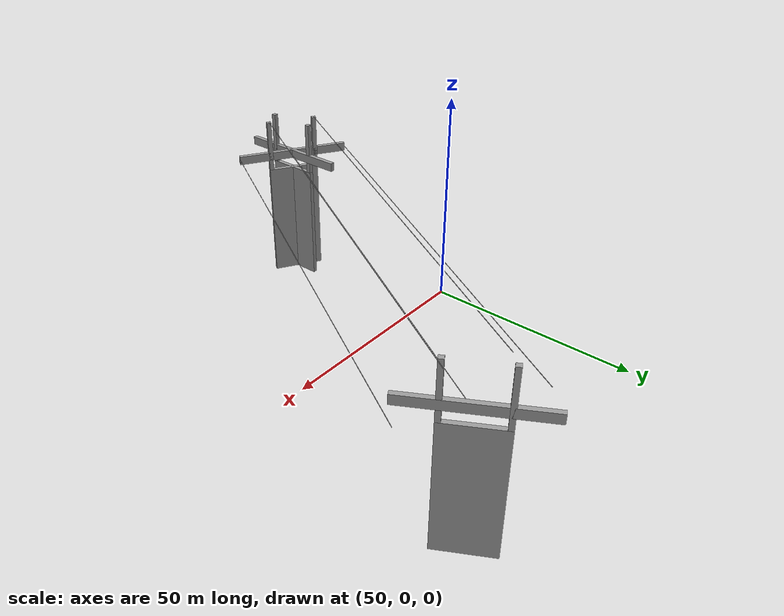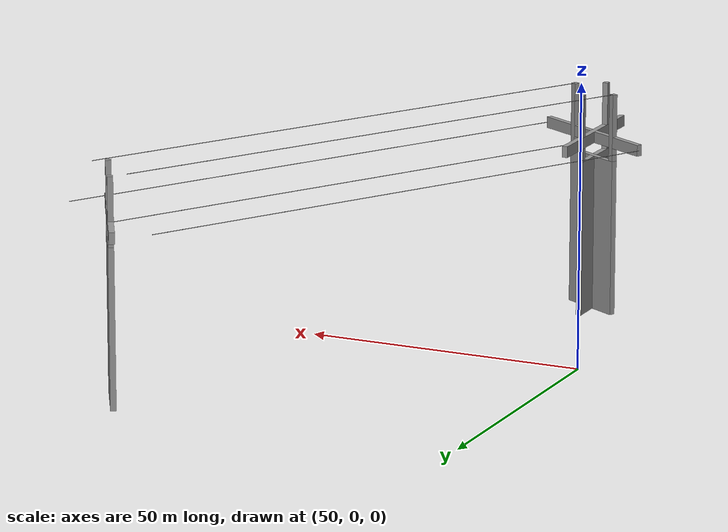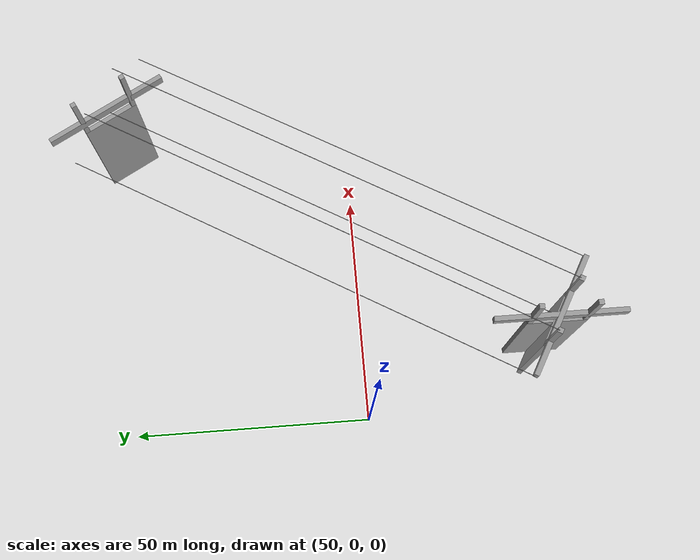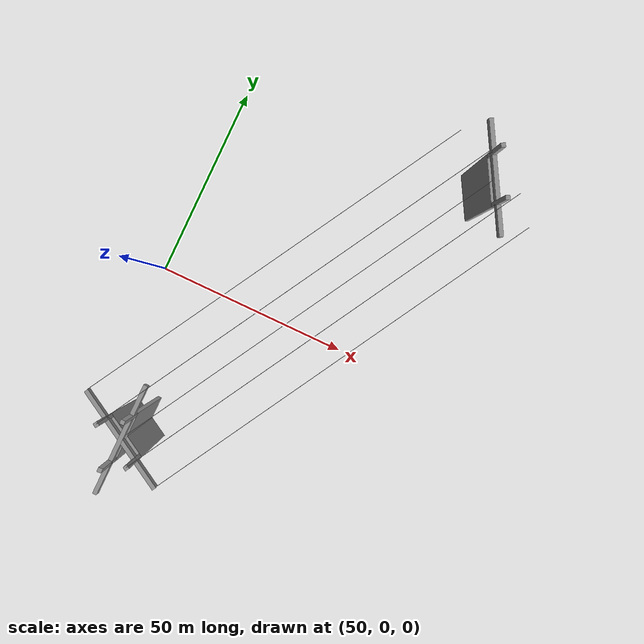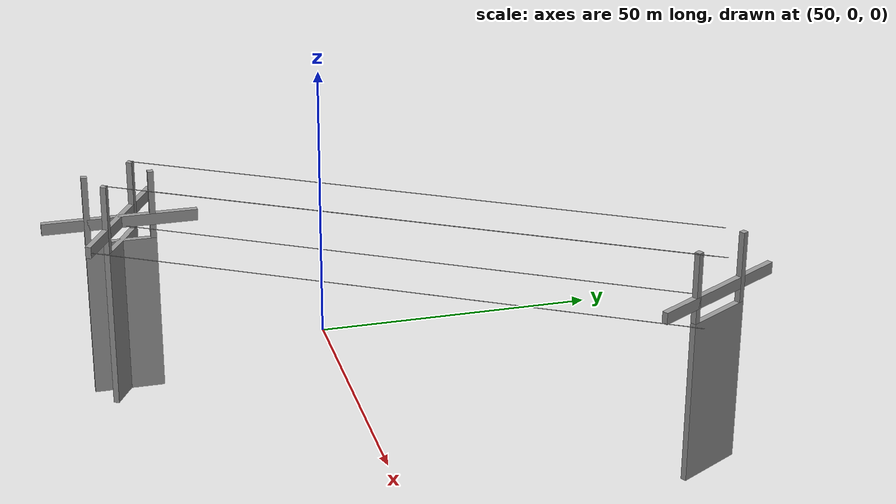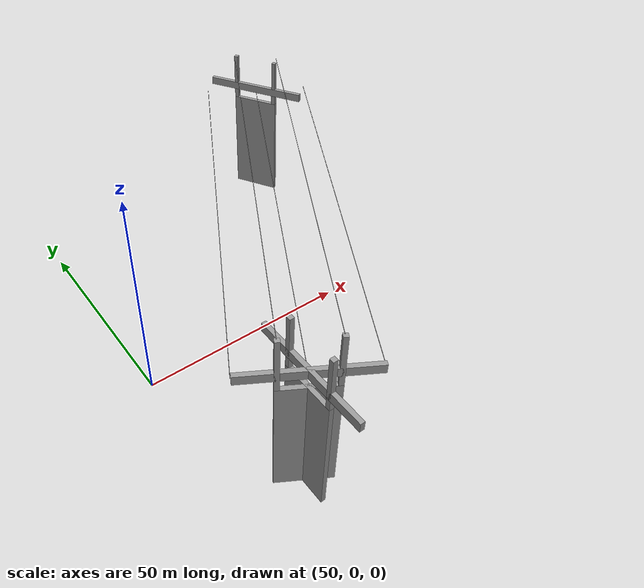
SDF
<sdf version="1.6">
 <world name="vrc_task_1">
  <model name="v4uav_simple_circuit_tower_0">
   <link name="link">
    <inertial>
     <mass>1</mass>
     <inertia>
      <ixx>0.166667</ixx>
      <ixy>0</ixy>
      <ixz>0</ixz>
      <iyy>0.166667</iyy>
      <iyz>0</iyz>
      <izz>0.166667</izz>
     </inertia>
    </inertial>
    <pose>0 0 14 0 -0 0</pose>
    <visual name="ModelPreview_4::link::visual_3">
     <geometry><box><size>1 1 12</size></box></geometry>
     <material>
      <script><name>Gazebo/Grey</name><uri>file://media/materials/scripts/gazebo.material</uri></script>
      <shader type="pixel"><normal_map>__default__</normal_map></shader>
      <ambient>0.3 0.3 0.3 1</ambient>
      <diffuse>0.7 0.7 0.7 1</diffuse>
      <specular>0.01 0.01 0.01 1</specular>
      <emissive>0 0 0 1</emissive>
     </material>
     <pose>0 -5.5 20 0 -0 0</pose>
    </visual>
    <visual name="ModelPreview_4::link::visual_1">
     <geometry><box><size>1 26.2 2</size></box></geometry>
     <material>
      <script><name>Gazebo/Grey</name><uri>file://media/materials/scripts/gazebo.material</uri></script>
      <shader type="pixel"><normal_map>__default__</normal_map></shader>
      <ambient>0.3 0.3 0.3 1</ambient>
      <diffuse>0.7 0.7 0.7 1</diffuse>
      <specular>0.01 0.01 0.01 1</specular>
      <emissive>0 0 0 1</emissive>
     </material>
     <pose>0 0 17.42 0 -0 0</pose>
    </visual>
    <visual name="ModelPreview_4::link::visual_2">
     <geometry><box><size>1 1 12</size></box></geometry>
     <material>
      <script><name>Gazebo/Grey</name><uri>file://media/materials/scripts/gazebo.material</uri></script>
      <shader type="pixel"><normal_map>__default__</normal_map></shader>
      <ambient>0.3 0.3 0.3 1</ambient>
      <diffuse>0.7 0.7 0.7 1</diffuse>
      <specular>0.01 0.01 0.01 1</specular>
      <emissive>0 0 0 1</emissive>
     </material>
     <pose>0 5.5 20 0 -0 0</pose>
    </visual>
    <visual name="visual">
     <geometry><box><size>1 12 28</size></box></geometry>
     <material>
      <script><name>Gazebo/Grey</name><uri>file://media/materials/scripts/gazebo.material</uri></script>
      <shader type="pixel"><normal_map>__default__</normal_map></shader>
      <ambient>0.3 0.3 0.3 1</ambient>
      <diffuse>0.7 0.7 0.7 1</diffuse>
      <specular>0.01 0.01 0.01 1</specular>
      <emissive>0 0 0 1</emissive>
     </material>
    </visual>
    <collision name="collision">
     <geometry><box><size>1 1 1</size></box></geometry>
     <surface>
      <friction>
       <ode><mu>1</mu><mu2>1</mu2><fdir1>0 0 0</fdir1><slip1>0</slip1><slip2>0</slip2></ode>
       <torsional>
        <coefficient>1</coefficient>
        <patch_radius>0</patch_radius>
        <surface_radius>0</surface_radius>
        <use_patch_radius>1</use_patch_radius>
        <ode><slip>0</slip></ode>
       </torsional>
      </friction>
      <bounce><restitution_coefficient>0</restitution_coefficient><threshold>1e+06</threshold></bounce>
      <contact>
       <collide_without_contact>0</collide_without_contact>
       <collide_without_contact_bitmask>1</collide_without_contact_bitmask>
       <collide_bitmask>1</collide_bitmask>
       <ode>
        <soft_cfm>0</soft_cfm>
        <soft_erp>0.2</soft_erp>
        <kp>1e+13</kp>
        <kd>1</kd>
        <max_vel>0.01</max_vel>
        <min_depth>0</min_depth>
       </ode>
       <bullet>
        <split_impulse>1</split_impulse>
        <split_impulse_penetration_threshold>-0.01</split_impulse_penetration_threshold>
        <soft_cfm>0</soft_cfm>
        <soft_erp>0.2</soft_erp>
        <kp>1e+13</kp>
        <kd>1</kd>
       </bullet>
      </contact>
     </surface>
    </collision>
   </link>
   <static>1</static>
   <pose>113 50 0 0 -0 0.523601</pose>
  </model>
  <model name="v4uav_simple_circuit_tower_2">
   <link name="link">
    <inertial>
     <mass>1</mass>
     <inertia>
      <ixx>0.166667</ixx>
      <ixy>0</ixy>
      <ixz>0</ixz>
      <iyy>0.166667</iyy>
      <iyz>0</iyz>
      <izz>0.166667</izz>
     </inertia>
    </inertial>
    <pose>0 0 14 0 -0 0</pose>
    <visual name="ModelPreview_4::link::visual_3">
     <geometry><box><size>1 1 12</size></box></geometry>
     <material>
      <script><name>Gazebo/Grey</name><uri>file://media/materials/scripts/gazebo.material</uri></script>
      <shader type="pixel"><normal_map>__default__</normal_map></shader>
      <ambient>0.3 0.3 0.3 1</ambient>
      <diffuse>0.7 0.7 0.7 1</diffuse>
      <specular>0.01 0.01 0.01 1</specular>
      <emissive>0 0 0 1</emissive>
     </material>
     <pose>0 -5.5 20 0 -0 0</pose>
    </visual>
    <visual name="ModelPreview_4::link::visual_1">
     <geometry><box><size>1 26.2 2</size></box></geometry>
     <material>
      <script><name>Gazebo/Grey</name><uri>file://media/materials/scripts/gazebo.material</uri></script>
      <shader type="pixel"><normal_map>__default__</normal_map></shader>
      <ambient>0.3 0.3 0.3 1</ambient>
      <diffuse>0.7 0.7 0.7 1</diffuse>
      <specular>0.01 0.01 0.01 1</specular>
      <emissive>0 0 0 1</emissive>
     </material>
     <pose>0 0 17.42 0 -0 0</pose>
    </visual>
    <visual name="ModelPreview_4::link::visual_2">
     <geometry><box><size>1 1 12</size></box></geometry>
     <material>
      <script><name>Gazebo/Grey</name><uri>file://media/materials/scripts/gazebo.material</uri></script>
      <shader type="pixel"><normal_map>__default__</normal_map></shader>
      <ambient>0.3 0.3 0.3 1</ambient>
      <diffuse>0.7 0.7 0.7 1</diffuse>
      <specular>0.01 0.01 0.01 1</specular>
      <emissive>0 0 0 1</emissive>
     </material>
     <pose>0 5.5 20 0 -0 0</pose>
    </visual>
    <visual name="visual">
     <geometry><box><size>1 12 28</size></box></geometry>
     <material>
      <script><name>Gazebo/Grey</name><uri>file://media/materials/scripts/gazebo.material</uri></script>
      <shader type="pixel"><normal_map>__default__</normal_map></shader>
      <ambient>0.3 0.3 0.3 1</ambient>
      <diffuse>0.7 0.7 0.7 1</diffuse>
      <specular>0.01 0.01 0.01 1</specular>
      <emissive>0 0 0 1</emissive>
     </material>
    </visual>
    <collision name="collision">
     <geometry><box><size>1 1 1</size></box></geometry>
     <surface>
      <friction>
       <ode><mu>1</mu><mu2>1</mu2><fdir1>0 0 0</fdir1><slip1>0</slip1><slip2>0</slip2></ode>
       <torsional>
        <coefficient>1</coefficient>
        <patch_radius>0</patch_radius>
        <surface_radius>0</surface_radius>
        <use_patch_radius>1</use_patch_radius>
        <ode><slip>0</slip></ode>
       </torsional>
      </friction>
      <bounce><restitution_coefficient>0</restitution_coefficient><threshold>1e+06</threshold></bounce>
      <contact>
       <collide_without_contact>0</collide_without_contact>
       <collide_without_contact_bitmask>1</collide_without_contact_bitmask>
       <collide_bitmask>1</collide_bitmask>
       <ode>
        <soft_cfm>0</soft_cfm>
        <soft_erp>0.2</soft_erp>
        <kp>1e+13</kp>
        <kd>1</kd>
        <max_vel>0.01</max_vel>
        <min_depth>0</min_depth>
       </ode>
       <bullet>
        <split_impulse>1</split_impulse>
        <split_impulse_penetration_threshold>-0.01</split_impulse_penetration_threshold>
        <soft_cfm>0</soft_cfm>
        <soft_erp>0.2</soft_erp>
        <kp>1e+13</kp>
        <kd>1</kd>
       </bullet>
      </contact>
     </surface>
    </collision>
   </link>
   <static>1</static>
   <pose>63 -37 0 0 -0 1.0472</pose>
  </model>
  <model name="v4uav_simple_circuit_line_0">
   <link name="link">
    <pose>0 0 0 1.5708 -0 0</pose>
    <inertial>
     <mass>1</mass>
     <pose>0 0 0 1.5708 -0 0</pose>
     <inertia><ixx>1</ixx><ixy>0</ixy><ixz>0</ixz><iyy>1</iyy><iyz>0</iyz><izz>1</izz></inertia>
    </inertial>
    <visual name="ModelPreview_1::link::visual_1">
     <cast_shadows>0</cast_shadows>
     <geometry><cylinder><radius>0.05</radius><length>100</length></cylinder></geometry>
     <material>
      <shader type="pixel"><normal_map>__default__</normal_map></shader>
      <script><name>ModelPreview_33::link::visual_MATERIAL_</name><uri>__default__</uri></script>
      <ambient>0 0 0 1</ambient>
      <diffuse>0 0 0 1</diffuse>
      <specular>0 0 0 1</specular>
      <emissive>0 0 0 1</emissive>
     </material>
     <pose>-5.5 40 0 0 -0 0</pose>
    </visual>
    <visual name="visual">
     <cast_shadows>0</cast_shadows>
     <geometry><cylinder><radius>0.05</radius><length>100</length></cylinder></geometry>
     <material>
      <shader type="pixel"><normal_map>__default__</normal_map></shader>
      <script><name>ModelPreview_33::link::visual_MATERIAL_</name><uri>__default__</uri></script>
      <ambient>0 0 0 1</ambient>
      <diffuse>0 0 0 1</diffuse>
      <specular>0 0 0 1</specular>
      <emissive>0 0 0 1</emissive>
     </material>
     <pose>5.5 40 0 0 -0 0</pose>
    </visual>
    <visual name="ModelPreview_1::link::visual_4">
     <cast_shadows>0</cast_shadows>
     <geometry><cylinder><radius>0.05</radius><length>100</length></cylinder></geometry>
     <material>
      <shader type="pixel"><normal_map>__default__</normal_map></shader>
      <script><name>ModelPreview_33::link::visual_MATERIAL_</name><uri>__default__</uri></script>
      <ambient>0 0 0 1</ambient>
      <diffuse>0 0 0 1</diffuse>
      <specular>0 0 0 1</specular>
      <emissive>0 0 0 1</emissive>
     </material>
     <pose>0 30.64 0 0 -0 0</pose>
    </visual>
    <visual name="ModelPreview_1::link::visual_3">
     <cast_shadows>0</cast_shadows>
     <geometry><cylinder><radius>0.05</radius><length>100</length></cylinder></geometry>
     <material>
      <shader type="pixel"><normal_map>__default__</normal_map></shader>
      <script><name>ModelPreview_33::link::visual_MATERIAL_</name><uri>__default__</uri></script>
      <ambient>0 0 0 1</ambient>
      <diffuse>0 0 0 1</diffuse>
      <specular>0 0 0 1</specular>
      <emissive>0 0 0 1</emissive>
     </material>
     <pose>-13.1 31.42 0 0 -0 0</pose>
    </visual>
    <visual name="ModelPreview_1::link::visual_2">
     <cast_shadows>0</cast_shadows>
     <geometry><cylinder><radius>0.05</radius><length>100</length></cylinder></geometry>
     <material>
      <shader type="pixel"><normal_map>__default__</normal_map></shader>
      <script><name>ModelPreview_33::link::visual_MATERIAL_</name><uri>__default__</uri></script>
      <ambient>0 0 0 1</ambient>
      <diffuse>0 0 0 1</diffuse>
      <specular>0 0 0 1</specular>
      <emissive>0 0 0 1</emissive>
     </material>
     <pose>13.1 31.42 0 0 -0 0</pose>
    </visual>
   </link>
   <static>1</static>
   <pose>88 6.5 0 0 -0 2.618</pose>
  </model>
  <model name="v4uav_simple_circuit_tower_3">
   <link name="link">
    <inertial>
     <mass>1</mass>
     <inertia>
      <ixx>0.166667</ixx>
      <ixy>0</ixy>
      <ixz>0</ixz>
      <iyy>0.166667</iyy>
      <iyz>0</iyz>
      <izz>0.166667</izz>
     </inertia>
    </inertial>
    <pose>0 0 14 0 -0 0</pose>
    <visual name="ModelPreview_4::link::visual_3">
     <geometry><box><size>1 1 12</size></box></geometry>
     <material>
      <script><name>Gazebo/Grey</name><uri>file://media/materials/scripts/gazebo.material</uri></script>
      <shader type="pixel"><normal_map>__default__</normal_map></shader>
      <ambient>0.3 0.3 0.3 1</ambient>
      <diffuse>0.7 0.7 0.7 1</diffuse>
      <specular>0.01 0.01 0.01 1</specular>
      <emissive>0 0 0 1</emissive>
     </material>
     <pose>0 -5.5 20 0 -0 0</pose>
    </visual>
    <visual name="ModelPreview_4::link::visual_1">
     <geometry><box><size>1 26.2 2</size></box></geometry>
     <material>
      <script><name>Gazebo/Grey</name><uri>file://media/materials/scripts/gazebo.material</uri></script>
      <shader type="pixel"><normal_map>__default__</normal_map></shader>
      <ambient>0.3 0.3 0.3 1</ambient>
      <diffuse>0.7 0.7 0.7 1</diffuse>
      <specular>0.01 0.01 0.01 1</specular>
      <emissive>0 0 0 1</emissive>
     </material>
     <pose>0 0 17.42 0 -0 0</pose>
    </visual>
    <visual name="ModelPreview_4::link::visual_2">
     <geometry><box><size>1 1 12</size></box></geometry>
     <material>
      <script><name>Gazebo/Grey</name><uri>file://media/materials/scripts/gazebo.material</uri></script>
      <shader type="pixel"><normal_map>__default__</normal_map></shader>
      <ambient>0.3 0.3 0.3 1</ambient>
      <diffuse>0.7 0.7 0.7 1</diffuse>
      <specular>0.01 0.01 0.01 1</specular>
      <emissive>0 0 0 1</emissive>
     </material>
     <pose>0 5.5 20 0 -0 0</pose>
    </visual>
    <visual name="visual">
     <geometry><box><size>1 12 28</size></box></geometry>
     <material>
      <script><name>Gazebo/Grey</name><uri>file://media/materials/scripts/gazebo.material</uri></script>
      <shader type="pixel"><normal_map>__default__</normal_map></shader>
      <ambient>0.3 0.3 0.3 1</ambient>
      <diffuse>0.7 0.7 0.7 1</diffuse>
      <specular>0.01 0.01 0.01 1</specular>
      <emissive>0 0 0 1</emissive>
     </material>
    </visual>
    <collision name="collision">
     <geometry><box><size>1 1 1</size></box></geometry>
     <surface>
      <friction>
       <ode><mu>1</mu><mu2>1</mu2><fdir1>0 0 0</fdir1><slip1>0</slip1><slip2>0</slip2></ode>
       <torsional>
        <coefficient>1</coefficient>
        <patch_radius>0</patch_radius>
        <surface_radius>0</surface_radius>
        <use_patch_radius>1</use_patch_radius>
        <ode><slip>0</slip></ode>
       </torsional>
      </friction>
      <bounce><restitution_coefficient>0</restitution_coefficient><threshold>1e+06</threshold></bounce>
      <contact>
       <collide_without_contact>0</collide_without_contact>
       <collide_without_contact_bitmask>1</collide_without_contact_bitmask>
       <collide_bitmask>1</collide_bitmask>
       <ode>
        <soft_cfm>0</soft_cfm>
        <soft_erp>0.2</soft_erp>
        <kp>1e+13</kp>
        <kd>1</kd>
        <max_vel>0.01</max_vel>
        <min_depth>0</min_depth>
       </ode>
       <bullet>
        <split_impulse>1</split_impulse>
        <split_impulse_penetration_threshold>-0.01</split_impulse_penetration_threshold>
        <soft_cfm>0</soft_cfm>
        <soft_erp>0.2</soft_erp>
        <kp>1e+13</kp>
        <kd>1</kd>
       </bullet>
      </contact>
     </surface>
    </collision>
   </link>
   <static>1</static>
   <pose>63 -37 0 0 -0 0</pose>
  </model>
 </world>
</sdf>
